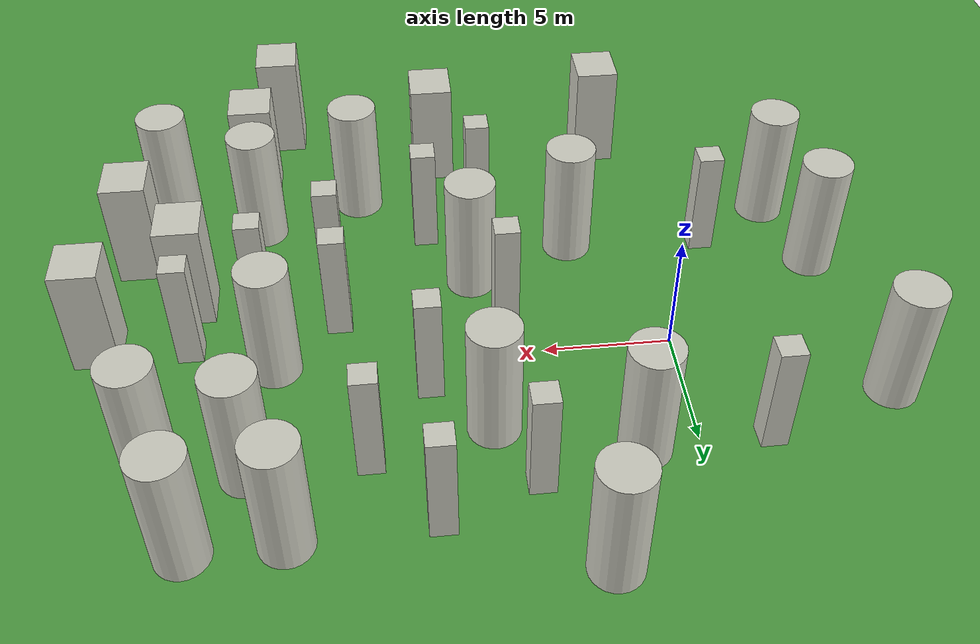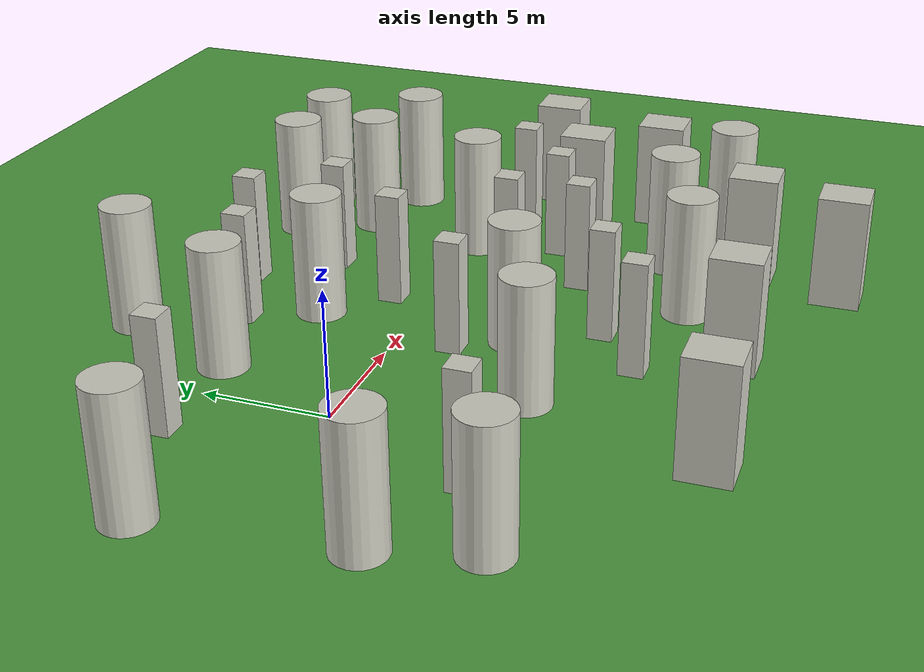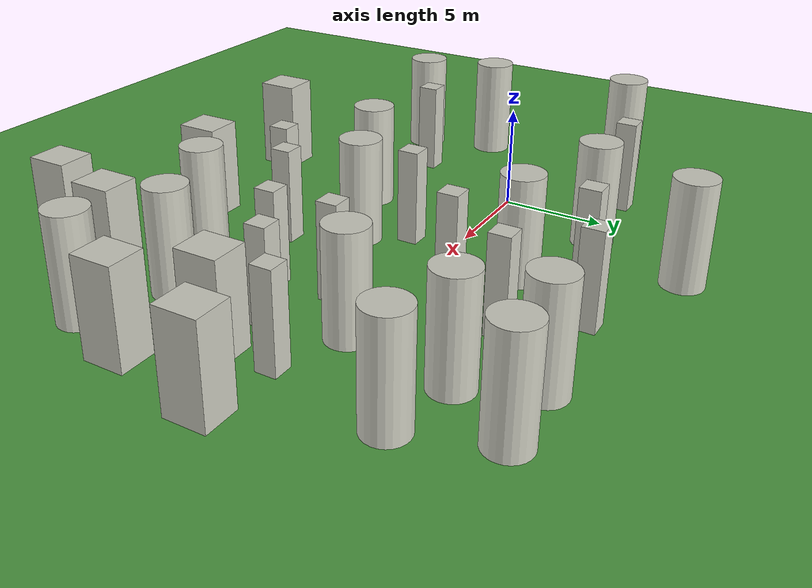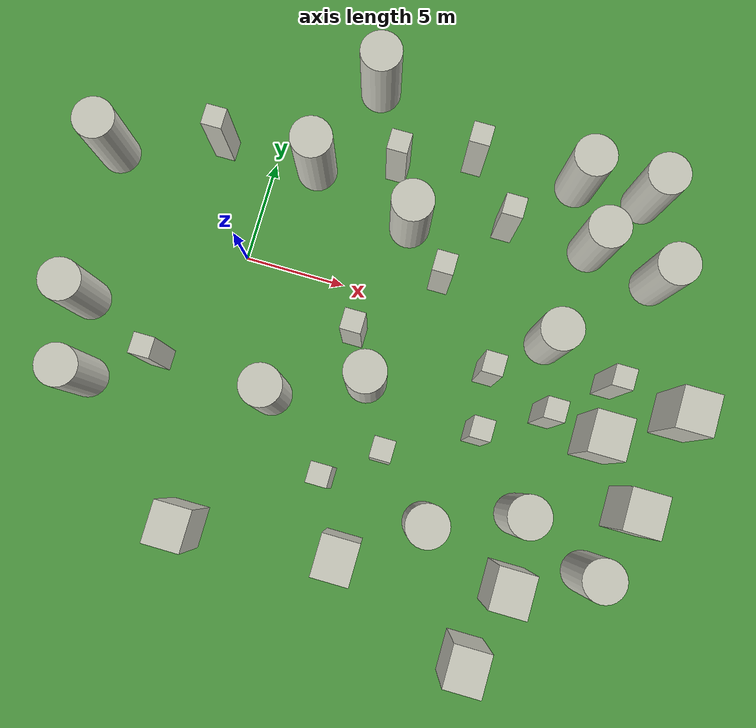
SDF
<sdf version="1.6">
 <world name="default">
  <light name="sun" type="directional">
   <pose>0 0 10 0 -0 0</pose>
   <diffuse>0.8 0.8 0.8 1</diffuse>
   <specular>0.2 0.2 0.2 1</specular>
   <attenuation>
    <range>1000</range>
    <constant>0.9</constant>
    <linear>0.01</linear>
    <quadratic>0.001</quadratic>
   </attenuation>
   <direction>-0.5 0.1 -0.9</direction>
  </light>
  <model name="ground_plane">
   <static>1</static>
   <link name="link">
    <collision name="collision">
     <geometry><plane><normal>0 0 1</normal><size>100 100</size></plane></geometry>
     <surface>
      <contact><collide_bitmask>65535</collide_bitmask></contact>
      <friction><ode><mu>100</mu><mu2>50</mu2></ode></friction>
     </surface>
    </collision>
    <visual name="visual">
     <cast_shadows>0</cast_shadows>
     <geometry><plane><normal>0 0 1</normal><size>100 100</size></plane></geometry>
     <material>
      <script><uri>file://media/materials/scripts/gazebo.material</uri><name>Gazebo/Grass</name></script>
     </material>
    </visual>
   </link>
  </model>
  <gravity>0 0 -9.8</gravity>
  <magnetic_field>6e-06 2.3e-05 -4.2e-05</magnetic_field>
  <atmosphere type="adiabatic"/>
  <physics name="default_physics" default="0" type="ode">
   <max_step_size>0.001</max_step_size>
   <real_time_factor>1</real_time_factor>
   <real_time_update_rate>1000</real_time_update_rate>
  </physics>
  <scene><ambient>0.4 0.4 0.4 1</ambient><background>0.7 0.7 0.7 1</background><shadows>1</shadows></scene>
  <spherical_coordinates>
   <surface_model>EARTH_WGS84</surface_model>
   <latitude_deg>0</latitude_deg>
   <longitude_deg>0</longitude_deg>
   <elevation>0</elevation>
   <heading_deg>0</heading_deg>
  </spherical_coordinates>
  <model name="unit_cylinder_clone">
   <pose>3.19429 -6.25577 2.58103 0 0 -0.000998</pose>
   <link name="link">
    <inertial>
     <mass>1</mass>
     <inertia><ixx>0.145833</ixx><ixy>0</ixy><ixz>0</ixz><iyy>0.145833</iyy><iyz>0</iyz><izz>0.125</izz></inertia>
    </inertial>
    <collision name="collision">
     <geometry><cylinder><radius>1.01171</radius><length>5.16206</length></cylinder></geometry>
    </collision>
    <visual name="visual">
     <geometry><cylinder><radius>1.01171</radius><length>5.16206</length></cylinder></geometry>
     <material>
      <script><name>Gazebo/PaintedWall</name><uri>file://media/materials/scripts/gazebo.material</uri></script>
     </material>
    </visual>
   </link>
  </model>
  <model name="unit_cylinder_clone_1">
   <pose>7.38645 3.75929 2.58295 -0.000951 0.001648 -0.998728</pose>
   <link name="link">
    <inertial>
     <mass>1</mass>
     <inertia><ixx>0.145833</ixx><ixy>0</ixy><ixz>0</ixz><iyy>0.145833</iyy><iyz>0</iyz><izz>0.125</izz></inertia>
    </inertial>
    <collision name="collision">
     <geometry><cylinder><radius>1.01171</radius><length>5.16206</length></cylinder></geometry>
    </collision>
    <visual name="visual">
     <geometry><cylinder><radius>1.01171</radius><length>5.16206</length></cylinder></geometry>
     <material>
      <script><name>Gazebo/PaintedWall</name><uri>file://media/materials/scripts/gazebo.material</uri></script>
     </material>
    </visual>
   </link>
  </model>
  <model name="unit_cylinder_clone_2">
   <pose>7.49748 -4.36951 2.58103 0 -1e-06 -0.00097</pose>
   <link name="link">
    <inertial>
     <mass>1</mass>
     <inertia><ixx>0.145833</ixx><ixy>0</ixy><ixz>0</ixz><iyy>0.145833</iyy><iyz>0</iyz><izz>0.125</izz></inertia>
    </inertial>
    <collision name="collision">
     <geometry><cylinder><radius>1.01171</radius><length>5.16206</length></cylinder></geometry>
    </collision>
    <visual name="visual">
     <geometry><cylinder><radius>1.01171</radius><length>5.16206</length></cylinder></geometry>
     <material>
      <script><name>Gazebo/PaintedWall</name><uri>file://media/materials/scripts/gazebo.material</uri></script>
     </material>
    </visual>
   </link>
  </model>
  <model name="unit_box_clone">
   <pose>9.20495 -7.44355 2.32051 0 -0 0.005156</pose>
   <link name="link">
    <inertial>
     <mass>1</mass>
     <inertia>
      <ixx>0.166667</ixx>
      <ixy>0</ixy>
      <ixz>0</ixz>
      <iyy>0.166667</iyy>
      <iyz>0</iyz>
      <izz>0.166667</izz>
     </inertia>
    </inertial>
    <collision name="collision"><geometry><box><size>1 1 4.64102</size></box></geometry></collision>
    <visual name="visual">
     <geometry><box><size>1 1 4.64102</size></box></geometry>
     <material>
      <script><name>Gazebo/PaintedWall</name><uri>file://media/materials/scripts/gazebo.material</uri></script>
     </material>
    </visual>
   </link>
  </model>
  <model name="unit_box_clone_0">
   <pose>9.5742 7.84601 2.32051 0 -0 0.005188</pose>
   <link name="link">
    <inertial>
     <mass>1</mass>
     <inertia>
      <ixx>0.166667</ixx>
      <ixy>0</ixy>
      <ixz>0</ixz>
      <iyy>0.166667</iyy>
      <iyz>0</iyz>
      <izz>0.166667</izz>
     </inertia>
    </inertial>
    <collision name="collision"><geometry><box><size>1 1 4.64102</size></box></geometry></collision>
    <visual name="visual">
     <geometry><box><size>1 1 4.64102</size></box></geometry>
     <material>
      <script><name>Gazebo/PaintedWall</name><uri>file://media/materials/scripts/gazebo.material</uri></script>
     </material>
    </visual>
   </link>
  </model>
  <model name="unit_box_clone_1">
   <pose>13.2396 -5.31435 2.32051 0 -0 0.00518</pose>
   <link name="link">
    <inertial>
     <mass>1</mass>
     <inertia>
      <ixx>0.166667</ixx>
      <ixy>0</ixy>
      <ixz>0</ixz>
      <iyy>0.166667</iyy>
      <iyz>0</iyz>
      <izz>0.166667</izz>
     </inertia>
    </inertial>
    <collision name="collision"><geometry><box><size>1 1 4.64102</size></box></geometry></collision>
    <visual name="visual">
     <geometry><box><size>1 1 4.64102</size></box></geometry>
     <material>
      <script><name>Gazebo/PaintedWall</name><uri>file://media/materials/scripts/gazebo.material</uri></script>
     </material>
    </visual>
   </link>
  </model>
  <model name="unit_box_clone_3">
   <pose>-2.54947 -5.99164 2.32051 0 -0 0.005148</pose>
   <link name="link">
    <inertial>
     <mass>1</mass>
     <inertia>
      <ixx>0.166667</ixx>
      <ixy>0</ixy>
      <ixz>0</ixz>
      <iyy>0.166667</iyy>
      <iyz>0</iyz>
      <izz>0.166667</izz>
     </inertia>
    </inertial>
    <collision name="collision"><geometry><box><size>1 1 4.64102</size></box></geometry></collision>
    <visual name="visual">
     <geometry><box><size>1 1 4.64102</size></box></geometry>
     <material>
      <script><name>Gazebo/PaintedWall</name><uri>file://media/materials/scripts/gazebo.material</uri></script>
     </material>
    </visual>
   </link>
  </model>
  <model name="unit_box_clone_4">
   <pose>-2.62829 5.1676 2.32051 0 -0 0.00518</pose>
   <link name="link">
    <inertial>
     <mass>1</mass>
     <inertia>
      <ixx>0.166667</ixx>
      <ixy>0</ixy>
      <ixz>0</ixz>
      <iyy>0.166667</iyy>
      <iyz>0</iyz>
      <izz>0.166667</izz>
     </inertia>
    </inertial>
    <collision name="collision"><geometry><box><size>1 1 4.64102</size></box></geometry></collision>
    <visual name="visual">
     <geometry><box><size>1 1 4.64102</size></box></geometry>
     <material>
      <script><name>Gazebo/PaintedWall</name><uri>file://media/materials/scripts/gazebo.material</uri></script>
     </material>
    </visual>
   </link>
  </model>
  <model name="unit_box_clone_5">
   <pose>6 6.43093 2.32051 0 -0 0.005172</pose>
   <link name="link">
    <inertial>
     <mass>1</mass>
     <inertia>
      <ixx>0.166667</ixx>
      <ixy>0</ixy>
      <ixz>0</ixz>
      <iyy>0.166667</iyy>
      <iyz>0</iyz>
      <izz>0.166667</izz>
     </inertia>
    </inertial>
    <collision name="collision"><geometry><box><size>1 1 4.64102</size></box></geometry></collision>
    <visual name="visual">
     <geometry><box><size>1 1 4.64102</size></box></geometry>
     <material>
      <script><name>Gazebo/PaintedWall</name><uri>file://media/materials/scripts/gazebo.material</uri></script>
     </material>
    </visual>
   </link>
  </model>
  <model name="unit_box_clone_6">
   <pose>6.29376 -2.25436 2.32051 0 -0 0.005136</pose>
   <link name="link">
    <inertial>
     <mass>1</mass>
     <inertia>
      <ixx>0.166667</ixx>
      <ixy>0</ixy>
      <ixz>0</ixz>
      <iyy>0.166667</iyy>
      <iyz>0</iyz>
      <izz>0.166667</izz>
     </inertia>
    </inertial>
    <collision name="collision"><geometry><box><size>1 1 4.64102</size></box></geometry></collision>
    <visual name="visual">
     <geometry><box><size>1 1 4.64102</size></box></geometry>
     <material>
      <script><name>Gazebo/PaintedWall</name><uri>file://media/materials/scripts/gazebo.material</uri></script>
     </material>
    </visual>
   </link>
  </model>
  <model name="unit_box_clone_7">
   <pose>11.9361 4.96222 2.32051 0 -0 0.005138</pose>
   <link name="link">
    <inertial>
     <mass>1</mass>
     <inertia>
      <ixx>0.166667</ixx>
      <ixy>0</ixy>
      <ixz>0</ixz>
      <iyy>0.166667</iyy>
      <iyz>0</iyz>
      <izz>0.166667</izz>
     </inertia>
    </inertial>
    <collision name="collision"><geometry><box><size>1 1 4.64102</size></box></geometry></collision>
    <visual name="visual">
     <geometry><box><size>1 1 4.64102</size></box></geometry>
     <material>
      <script><name>Gazebo/PaintedWall</name><uri>file://media/materials/scripts/gazebo.material</uri></script>
     </material>
    </visual>
   </link>
  </model>
  <model name="unit_box_clone_8">
   <pose>12.9788 -2.33333 2.32051 0 -0 0.005172</pose>
   <link name="link">
    <inertial>
     <mass>1</mass>
     <inertia>
      <ixx>0.166667</ixx>
      <ixy>0</ixy>
      <ixz>0</ixz>
      <iyy>0.166667</iyy>
      <iyz>0</iyz>
      <izz>0.166667</izz>
     </inertia>
    </inertial>
    <collision name="collision"><geometry><box><size>1 1 4.64102</size></box></geometry></collision>
    <visual name="visual">
     <geometry><box><size>1 1 4.64102</size></box></geometry>
     <material>
      <script><name>Gazebo/PaintedWall</name><uri>file://media/materials/scripts/gazebo.material</uri></script>
     </material>
    </visual>
   </link>
  </model>
  <model name="unit_box_clone_9">
   <pose>6.79397 -9.30783 2.32051 0 -0 0.005164</pose>
   <link name="link">
    <inertial>
     <mass>1</mass>
     <inertia>
      <ixx>0.166667</ixx>
      <ixy>0</ixy>
      <ixz>0</ixz>
      <iyy>0.166667</iyy>
      <iyz>0</iyz>
      <izz>0.166667</izz>
     </inertia>
    </inertial>
    <collision name="collision"><geometry><box><size>1 1 4.64102</size></box></geometry></collision>
    <visual name="visual">
     <geometry><box><size>1 1 4.64102</size></box></geometry>
     <material>
      <script><name>Gazebo/PaintedWall</name><uri>file://media/materials/scripts/gazebo.material</uri></script>
     </material>
    </visual>
   </link>
  </model>
  <model name="unit_box_clone_10">
   <pose>9.58367 1.50924 2.32051 0 -0 0.005128</pose>
   <link name="link">
    <inertial>
     <mass>1</mass>
     <inertia>
      <ixx>0.166667</ixx>
      <ixy>0</ixy>
      <ixz>0</ixz>
      <iyy>0.166667</iyy>
      <iyz>0</iyz>
      <izz>0.166667</izz>
     </inertia>
    </inertial>
    <collision name="collision"><geometry><box><size>1 1 4.64102</size></box></geometry></collision>
    <visual name="visual">
     <geometry><box><size>1 1 4.64102</size></box></geometry>
     <material>
      <script><name>Gazebo/PaintedWall</name><uri>file://media/materials/scripts/gazebo.material</uri></script>
     </material>
    </visual>
   </link>
  </model>
  <model name="unit_cylinder_clone_0">
   <pose>2.08076 5.3122 2.58103 0 -0 -0.001204</pose>
   <link name="link">
    <inertial>
     <mass>1</mass>
     <inertia><ixx>0.145833</ixx><ixy>0</ixy><ixz>0</ixz><iyy>0.145833</iyy><iyz>0</iyz><izz>0.125</izz></inertia>
    </inertial>
    <collision name="collision">
     <geometry><cylinder><radius>1.01171</radius><length>5.16206</length></cylinder></geometry>
    </collision>
    <visual name="visual">
     <geometry><cylinder><radius>1.01171</radius><length>5.16206</length></cylinder></geometry>
     <material>
      <script><name>Gazebo/PaintedWall</name><uri>file://media/materials/scripts/gazebo.material</uri></script>
     </material>
    </visual>
   </link>
  </model>
  <model name="unit_cylinder_clone_3">
   <pose>4.02793 10.1812 2.58103 0 -1e-06 -0.001195</pose>
   <link name="link">
    <inertial>
     <mass>1</mass>
     <inertia><ixx>0.145833</ixx><ixy>0</ixy><ixz>0</ixz><iyy>0.145833</iyy><iyz>0</iyz><izz>0.125</izz></inertia>
    </inertial>
    <collision name="collision">
     <geometry><cylinder><radius>1.01171</radius><length>5.16206</length></cylinder></geometry>
    </collision>
    <visual name="visual">
     <geometry><cylinder><radius>1.01171</radius><length>5.16206</length></cylinder></geometry>
     <material>
      <script><name>Gazebo/PaintedWall</name><uri>file://media/materials/scripts/gazebo.material</uri></script>
     </material>
    </visual>
   </link>
  </model>
  <model name="unit_cylinder_clone_4">
   <pose>15.4507 -0.056896 2.58103 0 0 -0.001185</pose>
   <link name="link">
    <inertial>
     <mass>1</mass>
     <inertia><ixx>0.145833</ixx><ixy>0</ixy><ixz>0</ixz><iyy>0.145833</iyy><iyz>0</iyz><izz>0.125</izz></inertia>
    </inertial>
    <collision name="collision">
     <geometry><cylinder><radius>1.01171</radius><length>5.16206</length></cylinder></geometry>
    </collision>
    <visual name="visual">
     <geometry><cylinder><radius>1.01171</radius><length>5.16206</length></cylinder></geometry>
     <material>
      <script><name>Gazebo/PaintedWall</name><uri>file://media/materials/scripts/gazebo.material</uri></script>
     </material>
    </visual>
   </link>
  </model>
  <model name="unit_cylinder_clone_5">
   <pose>16.3151 5.06729 2.58103 0 0 -0.001174</pose>
   <link name="link">
    <inertial>
     <mass>1</mass>
     <inertia><ixx>0.145833</ixx><ixy>0</ixy><ixz>0</ixz><iyy>0.145833</iyy><iyz>0</iyz><izz>0.125</izz></inertia>
    </inertial>
    <collision name="collision">
     <geometry><cylinder><radius>1.01171</radius><length>5.16206</length></cylinder></geometry>
    </collision>
    <visual name="visual">
     <geometry><cylinder><radius>1.01171</radius><length>5.16206</length></cylinder></geometry>
     <material>
      <script><name>Gazebo/PaintedWall</name><uri>file://media/materials/scripts/gazebo.material</uri></script>
     </material>
    </visual>
   </link>
  </model>
  <model name="unit_cylinder_clone_6">
   <pose>16.2171 -8.50663 2.58102 0 -0 -0.001163</pose>
   <link name="link">
    <inertial>
     <mass>1</mass>
     <inertia><ixx>0.145833</ixx><ixy>0</ixy><ixz>0</ixz><iyy>0.145833</iyy><iyz>0</iyz><izz>0.125</izz></inertia>
    </inertial>
    <collision name="collision">
     <geometry><cylinder><radius>1.01171</radius><length>5.16206</length></cylinder></geometry>
    </collision>
    <visual name="visual">
     <geometry><cylinder><radius>1.01171</radius><length>5.16206</length></cylinder></geometry>
     <material>
      <script><name>Gazebo/PaintedWall</name><uri>file://media/materials/scripts/gazebo.material</uri></script>
     </material>
    </visual>
   </link>
  </model>
  <model name="unit_cylinder_clone_7">
   <pose>12.0322 -10.1383 2.58102 0 0 -0.001157</pose>
   <link name="link">
    <inertial>
     <mass>1</mass>
     <inertia><ixx>0.145833</ixx><ixy>0</ixy><ixz>0</ixz><iyy>0.145833</iyy><iyz>0</iyz><izz>0.125</izz></inertia>
    </inertial>
    <collision name="collision">
     <geometry><cylinder><radius>1.01171</radius><length>5.16206</length></cylinder></geometry>
    </collision>
    <visual name="visual">
     <geometry><cylinder><radius>1.01171</radius><length>5.16206</length></cylinder></geometry>
     <material>
      <script><name>Gazebo/PaintedWall</name><uri>file://media/materials/scripts/gazebo.material</uri></script>
     </material>
    </visual>
   </link>
  </model>
  <model name="unit_cylinder_clone_8">
   <pose>14.8485 8.12707 2.58103 0 0 -0.001146</pose>
   <link name="link">
    <inertial>
     <mass>1</mass>
     <inertia><ixx>0.145833</ixx><ixy>0</ixy><ixz>0</ixz><iyy>0.145833</iyy><iyz>0</iyz><izz>0.125</izz></inertia>
    </inertial>
    <collision name="collision">
     <geometry><cylinder><radius>1.01171</radius><length>5.16206</length></cylinder></geometry>
    </collision>
    <visual name="visual">
     <geometry><cylinder><radius>1.01171</radius><length>5.16206</length></cylinder></geometry>
     <material>
      <script><name>Gazebo/PaintedWall</name><uri>file://media/materials/scripts/gazebo.material</uri></script>
     </material>
    </visual>
   </link>
  </model>
  <model name="unit_cylinder_clone_9">
   <pose>18.2961 8.23231 2.58102 0 -0 -0.001136</pose>
   <link name="link">
    <inertial>
     <mass>1</mass>
     <inertia><ixx>0.145833</ixx><ixy>0</ixy><ixz>0</ixz><iyy>0.145833</iyy><iyz>0</iyz><izz>0.125</izz></inertia>
    </inertial>
    <collision name="collision">
     <geometry><cylinder><radius>1.01171</radius><length>5.16206</length></cylinder></geometry>
    </collision>
    <visual name="visual">
     <geometry><cylinder><radius>1.01171</radius><length>5.16206</length></cylinder></geometry>
     <material>
      <script><name>Gazebo/PaintedWall</name><uri>file://media/materials/scripts/gazebo.material</uri></script>
     </material>
    </visual>
   </link>
  </model>
  <model name="unit_cylinder_clone_10">
   <pose>19.7438 4.28445 2.58102 0 -0 -0.001197</pose>
   <link name="link">
    <inertial>
     <mass>1</mass>
     <inertia><ixx>0.145833</ixx><ixy>0</ixy><ixz>0</ixz><iyy>0.145833</iyy><iyz>0</iyz><izz>0.125</izz></inertia>
    </inertial>
    <collision name="collision">
     <geometry><cylinder><radius>1.01171</radius><length>5.16206</length></cylinder></geometry>
    </collision>
    <visual name="visual">
     <geometry><cylinder><radius>1.01171</radius><length>5.16206</length></cylinder></geometry>
     <material>
      <script><name>Gazebo/PaintedWall</name><uri>file://media/materials/scripts/gazebo.material</uri></script>
     </material>
    </visual>
   </link>
  </model>
  <model name="unit_box_clone_2_clone_0">
   <pose>18.77 -1.29509 2.32051 0 -0 0.005126</pose>
   <link name="link">
    <inertial>
     <mass>1</mass>
     <inertia>
      <ixx>0.166667</ixx>
      <ixy>0</ixy>
      <ixz>0</ixz>
      <iyy>0.166667</iyy>
      <iyz>0</iyz>
      <izz>0.166667</izz>
     </inertia>
    </inertial>
    <collision name="collision"><geometry><box><size>1 1 4.64102</size></box></geometry></collision>
    <visual name="visual">
     <geometry><box><size>1 1 4.64102</size></box></geometry>
     <material>
      <script><name>Gazebo/PaintedWall</name><uri>file://media/materials/scripts/gazebo.material</uri></script>
     </material>
    </visual>
   </link>
  </model>
  <model name="unit_box_clone_2_clone_1">
   <pose>16.1906 -3.55858 2.32051 0 -0 0.005137</pose>
   <link name="link">
    <inertial>
     <mass>1</mass>
     <inertia>
      <ixx>0.166667</ixx>
      <ixy>0</ixy>
      <ixz>0</ixz>
      <iyy>0.166667</iyy>
      <iyz>0</iyz>
      <izz>0.166667</izz>
     </inertia>
    </inertial>
    <collision name="collision"><geometry><box><size>1 1 4.64102</size></box></geometry></collision>
    <visual name="visual">
     <geometry><box><size>1 1 4.64102</size></box></geometry>
     <material>
      <script><name>Gazebo/PaintedWall</name><uri>file://media/materials/scripts/gazebo.material</uri></script>
     </material>
    </visual>
   </link>
  </model>
  <model name="unit_box_clone_2_clone_2">
   <pose>18.8489 -3.97971 2.32051 0 -1e-06 0.004958</pose>
   <link name="link">
    <inertial>
     <mass>1</mass>
     <inertia>
      <ixx>0.166667</ixx>
      <ixy>0</ixy>
      <ixz>0</ixz>
      <iyy>0.166667</iyy>
      <iyz>0</iyz>
      <izz>0.166667</izz>
     </inertia>
    </inertial>
    <collision name="collision"><geometry><box><size>1.78796 2.0085 4.64102</size></box></geometry></collision>
    <visual name="visual">
     <geometry><box><size>1.78796 2.0085 4.64102</size></box></geometry>
     <material>
      <script><name>Gazebo/PaintedWall</name><uri>file://media/materials/scripts/gazebo.material</uri></script>
     </material>
    </visual>
   </link>
  </model>
  <model name="unit_box_clone_2_clone_2_clone">
   <pose>21.2173 -6.90107 2.32051 0 -1e-06 0.004959</pose>
   <link name="link">
    <inertial>
     <mass>1</mass>
     <inertia>
      <ixx>0.166667</ixx>
      <ixy>0</ixy>
      <ixz>0</ixz>
      <iyy>0.166667</iyy>
      <iyz>0</iyz>
      <izz>0.166667</izz>
     </inertia>
    </inertial>
    <collision name="collision"><geometry><box><size>1.78796 2.0085 4.64102</size></box></geometry></collision>
    <visual name="visual">
     <geometry><box><size>1.78796 2.0085 4.64102</size></box></geometry>
     <material>
      <script><name>Gazebo/PaintedWall</name><uri>file://media/materials/scripts/gazebo.material</uri></script>
     </material>
    </visual>
   </link>
  </model>
  <model name="unit_box_clone_2_clone_2_clone_0">
   <pose>22.3491 -1.8478 2.32051 -0 1e-06 0.004959</pose>
   <link name="link">
    <inertial>
     <mass>1</mass>
     <inertia>
      <ixx>0.166667</ixx>
      <ixy>0</ixy>
      <ixz>0</ixz>
      <iyy>0.166667</iyy>
      <iyz>0</iyz>
      <izz>0.166667</izz>
     </inertia>
    </inertial>
    <collision name="collision"><geometry><box><size>1.78796 2.0085 4.64102</size></box></geometry></collision>
    <visual name="visual">
     <geometry><box><size>1.78796 2.0085 4.64102</size></box></geometry>
     <material>
      <script><name>Gazebo/PaintedWall</name><uri>file://media/materials/scripts/gazebo.material</uri></script>
     </material>
    </visual>
   </link>
  </model>
  <model name="unit_box_clone_2_clone_2_clone_1">
   <pose>16.4572 -11.8819 2.32051 -0 1e-06 0.004959</pose>
   <link name="link">
    <inertial>
     <mass>1</mass>
     <inertia>
      <ixx>0.166667</ixx>
      <ixy>0</ixy>
      <ixz>0</ixz>
      <iyy>0.166667</iyy>
      <iyz>0</iyz>
      <izz>0.166667</izz>
     </inertia>
    </inertial>
    <collision name="collision"><geometry><box><size>1.78796 2.0085 4.64102</size></box></geometry></collision>
    <visual name="visual">
     <geometry><box><size>1.78796 2.0085 4.64102</size></box></geometry>
     <material>
      <script><name>Gazebo/PaintedWall</name><uri>file://media/materials/scripts/gazebo.material</uri></script>
     </material>
    </visual>
   </link>
  </model>
  <model name="unit_box_clone_2_clone_2_clone_2">
   <pose>8.56185 -12.6978 2.32051 0 -1e-06 0.004959</pose>
   <link name="link">
    <inertial>
     <mass>1</mass>
     <inertia>
      <ixx>0.166667</ixx>
      <ixy>0</ixy>
      <ixz>0</ixz>
      <iyy>0.166667</iyy>
      <iyz>0</iyz>
      <izz>0.166667</izz>
     </inertia>
    </inertial>
    <collision name="collision"><geometry><box><size>1.78796 2.0085 4.64102</size></box></geometry></collision>
    <visual name="visual">
     <geometry><box><size>1.78796 2.0085 4.64102</size></box></geometry>
     <material>
      <script><name>Gazebo/PaintedWall</name><uri>file://media/materials/scripts/gazebo.material</uri></script>
     </material>
    </visual>
   </link>
  </model>
  <model name="unit_cylinder_clone_6_clone">
   <pose>20.0456 -10.2507 2.58103 0 -0 -0.001162</pose>
   <link name="link">
    <inertial>
     <mass>1</mass>
     <inertia><ixx>0.145833</ixx><ixy>0</ixy><ixz>0</ixz><iyy>0.145833</iyy><iyz>0</iyz><izz>0.125</izz></inertia>
    </inertial>
    <collision name="collision">
     <geometry><cylinder><radius>1.01171</radius><length>5.16206</length></cylinder></geometry>
    </collision>
    <visual name="visual">
     <geometry><cylinder><radius>1.01171</radius><length>5.16206</length></cylinder></geometry>
     <material>
      <script><name>Gazebo/PaintedWall</name><uri>file://media/materials/scripts/gazebo.material</uri></script>
     </material>
    </visual>
   </link>
  </model>
  <model name="unit_cylinder_clone_6_clone_0">
   <pose>-7.79679 3.3971 2.58103 0 -1e-06 -0.001152</pose>
   <link name="link">
    <inertial>
     <mass>1</mass>
     <inertia><ixx>0.145833</ixx><ixy>0</ixy><ixz>0</ixz><iyy>0.145833</iyy><iyz>0</iyz><izz>0.125</izz></inertia>
    </inertial>
    <collision name="collision">
     <geometry><cylinder><radius>1.01171</radius><length>5.16206</length></cylinder></geometry>
    </collision>
    <visual name="visual">
     <geometry><cylinder><radius>1.01171</radius><length>5.16206</length></cylinder></geometry>
     <material>
      <script><name>Gazebo/PaintedWall</name><uri>file://media/materials/scripts/gazebo.material</uri></script>
     </material>
    </visual>
   </link>
  </model>
  <model name="unit_cylinder_clone_6_clone_1">
   <pose>-6.88621 -4.19836 2.58103 0 0 -0.001143</pose>
   <link name="link">
    <inertial>
     <mass>1</mass>
     <inertia><ixx>0.145833</ixx><ixy>0</ixy><ixz>0</ixz><iyy>0.145833</iyy><iyz>0</iyz><izz>0.125</izz></inertia>
    </inertial>
    <collision name="collision">
     <geometry><cylinder><radius>1.01171</radius><length>5.16206</length></cylinder></geometry>
    </collision>
    <visual name="visual">
     <geometry><cylinder><radius>1.01171</radius><length>5.16206</length></cylinder></geometry>
     <material>
      <script><name>Gazebo/PaintedWall</name><uri>file://media/materials/scripts/gazebo.material</uri></script>
     </material>
    </visual>
   </link>
  </model>
  <model name="unit_cylinder_clone_6_clone_2">
   <pose>-5.7939 -7.92893 2.58102 0 -0 -0.001133</pose>
   <link name="link">
    <inertial>
     <mass>1</mass>
     <inertia><ixx>0.145833</ixx><ixy>0</ixy><ixz>0</ixz><iyy>0.145833</iyy><iyz>0</iyz><izz>0.125</izz></inertia>
    </inertial>
    <collision name="collision">
     <geometry><cylinder><radius>1.01171</radius><length>5.16206</length></cylinder></geometry>
    </collision>
    <visual name="visual">
     <geometry><cylinder><radius>1.01171</radius><length>5.16206</length></cylinder></geometry>
     <material>
      <script><name>Gazebo/PaintedWall</name><uri>file://media/materials/scripts/gazebo.material</uri></script>
     </material>
    </visual>
   </link>
  </model>
  <model name="unit_box_clone_2_clone_2_clone_0_clone">
   <pose>1.00078 -13.3732 2.32051 -0 1e-06 0.004959</pose>
   <link name="link">
    <inertial>
     <mass>1</mass>
     <inertia>
      <ixx>0.166667</ixx>
      <ixy>0</ixy>
      <ixz>0</ixz>
      <iyy>0.166667</iyy>
      <iyz>0</iyz>
      <izz>0.166667</izz>
     </inertia>
    </inertial>
    <collision name="collision"><geometry><box><size>1.78796 2.0085 4.64102</size></box></geometry></collision>
    <visual name="visual">
     <geometry><box><size>1.78796 2.0085 4.64102</size></box></geometry>
     <material>
      <script><name>Gazebo/PaintedWall</name><uri>file://media/materials/scripts/gazebo.material</uri></script>
     </material>
    </visual>
   </link>
  </model>
  <model name="unit_box_clone_2_clone_2_clone_0_clone_0">
   <pose>15.427 -15.6411 2.32051 0 -1e-06 0.004959</pose>
   <link name="link">
    <inertial>
     <mass>1</mass>
     <inertia>
      <ixx>0.166667</ixx>
      <ixy>0</ixy>
      <ixz>0</ixz>
      <iyy>0.166667</iyy>
      <iyz>0</iyz>
      <izz>0.166667</izz>
     </inertia>
    </inertial>
    <collision name="collision"><geometry><box><size>1.78796 2.0085 4.64102</size></box></geometry></collision>
    <visual name="visual">
     <geometry><box><size>1.78796 2.0085 4.64102</size></box></geometry>
     <material>
      <script><name>Gazebo/PaintedWall</name><uri>file://media/materials/scripts/gazebo.material</uri></script>
     </material>
    </visual>
   </link>
  </model>
 </world>
</sdf>
